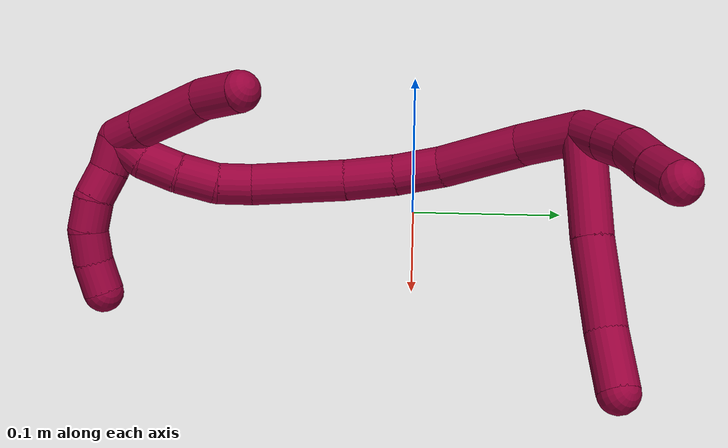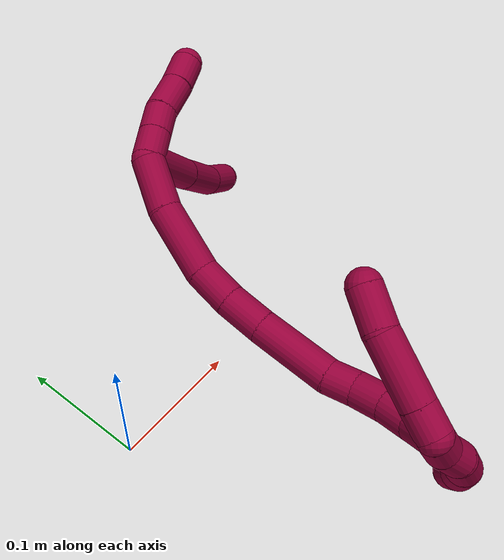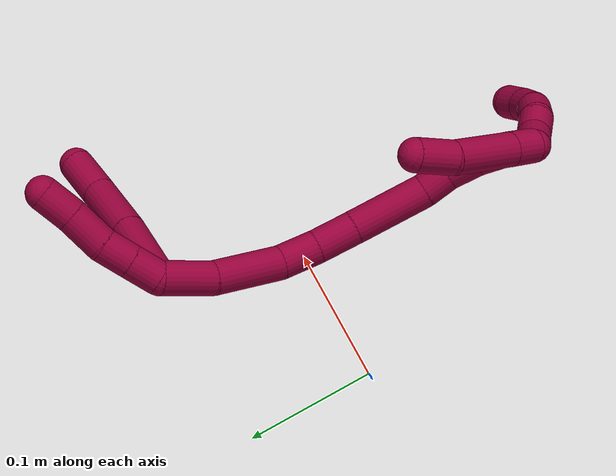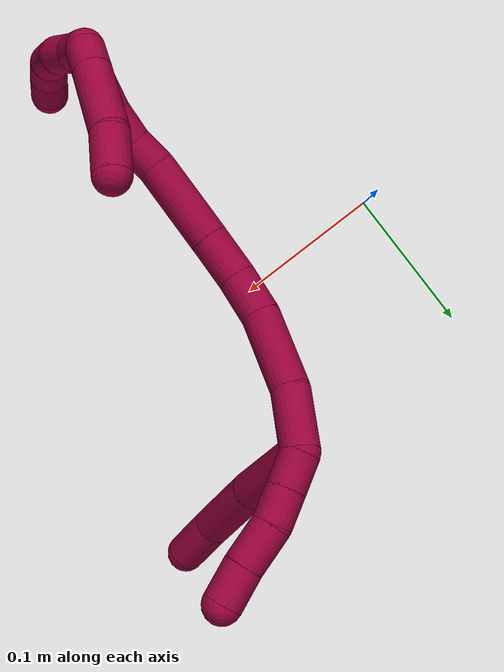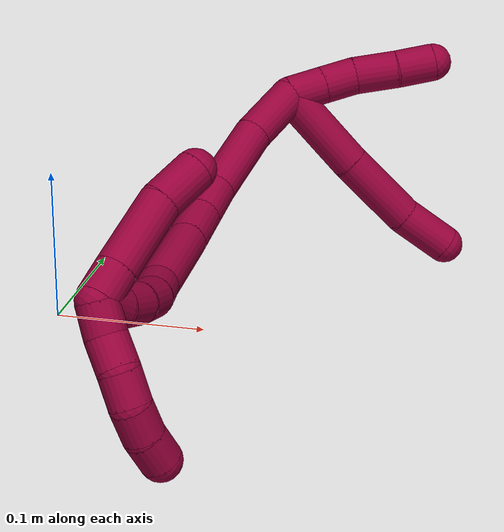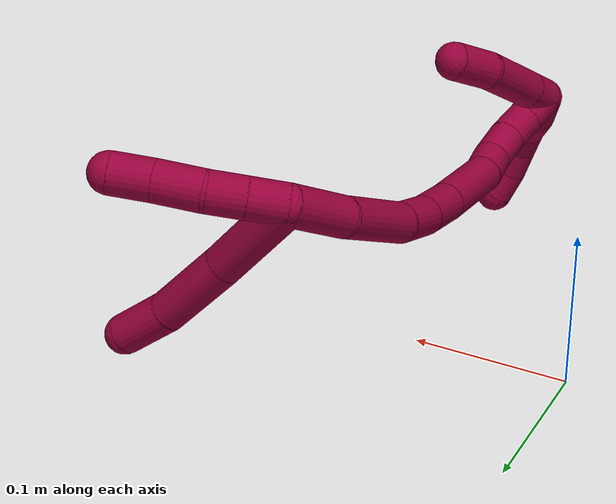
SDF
<sdf version="1.7">
 <world name="default">
  <model name="8">
   <static>0</static>
   <link name="8">
    <collision name="collision-cylinder-e_1_2_8">
     <pose>0.028643 0.010535 -0.004849 -2.00218 1.18607 -1.62162</pose>
     <geometry><cylinder><radius>0.0125</radius><length>0.061804</length></cylinder></geometry>
     <surface>
      <friction><ode><mu>1.16</mu><mu2>1.16</mu2><slip1>0</slip1><slip2>0</slip2></ode></friction>
      <contact><ode><kp>1e+06</kp><kd>1</kd><max_vel>0</max_vel><min_depth>0.001</min_depth></ode></contact>
     </surface>
    </collision>
    <visual name="visual-cylinder-e_1_2_8">
     <pose>0.028643 0.010535 -0.004849 -2.00218 1.18607 -1.62162</pose>
     <geometry><cylinder><radius>0.0125</radius><length>0.061804</length></cylinder></geometry>
     <material><ambient>0.584314 0 0.227451 1</ambient></material>
    </visual>
    <collision name="collision-cylinder-e_2_8_9">
     <pose>0.081696 0.030896 -0.012209 -1.82096 1.17704 -1.41985</pose>
     <geometry><cylinder><radius>0.0125</radius><length>0.052865</length></cylinder></geometry>
     <surface>
      <friction><ode><mu>1.16</mu><mu2>1.16</mu2><slip1>0</slip1><slip2>0</slip2></ode></friction>
      <contact><ode><kp>1e+06</kp><kd>1</kd><max_vel>0</max_vel><min_depth>0.001</min_depth></ode></contact>
     </surface>
    </collision>
    <visual name="visual-cylinder-e_2_8_9">
     <pose>0.081696 0.030896 -0.012209 -1.82096 1.17704 -1.41985</pose>
     <geometry><cylinder><radius>0.0125</radius><length>0.052865</length></cylinder></geometry>
     <material><ambient>0.584314 0 0.227451 1</ambient></material>
    </visual>
    <collision name="collision-cylinder-e_3_9_6">
     <pose>0.12288 0.04617 -0.013722 -1.38971 1.25185 -1.08459</pose>
     <geometry><cylinder><radius>0.0125</radius><length>0.035331</length></cylinder></geometry>
     <surface>
      <friction><ode><mu>1.16</mu><mu2>1.16</mu2><slip1>0</slip1><slip2>0</slip2></ode></friction>
      <contact><ode><kp>1e+06</kp><kd>1</kd><max_vel>0</max_vel><min_depth>0.001</min_depth></ode></contact>
     </surface>
    </collision>
    <visual name="visual-cylinder-e_3_9_6">
     <pose>0.12288 0.04617 -0.013722 -1.38971 1.25185 -1.08459</pose>
     <geometry><cylinder><radius>0.0125</radius><length>0.035331</length></cylinder></geometry>
     <material><ambient>0.584314 0 0.227451 1</ambient></material>
    </visual>
    <collision name="collision-cylinder-e_1_2_10">
     <pose>0.006548 0.001859 0.00952 -0.192887 0.593816 -0.05918</pose>
     <geometry><cylinder><radius>0.0125</radius><length>0.023406</length></cylinder></geometry>
     <surface>
      <friction><ode><mu>1.16</mu><mu2>1.16</mu2><slip1>0</slip1><slip2>0</slip2></ode></friction>
      <contact><ode><kp>1e+06</kp><kd>1</kd><max_vel>0</max_vel><min_depth>0.001</min_depth></ode></contact>
     </surface>
    </collision>
    <visual name="visual-cylinder-e_1_2_10">
     <pose>0.006548 0.001859 0.00952 -0.192887 0.593816 -0.05918</pose>
     <geometry><cylinder><radius>0.0125</radius><length>0.023406</length></cylinder></geometry>
     <material><ambient>0.584314 0 0.227451 1</ambient></material>
    </visual>
    <collision name="collision-cylinder-e_2_10_11">
     <pose>0.019488 0.0055 0.028219 -0.191644 0.599636 -0.059409</pose>
     <geometry><cylinder><radius>0.0125</radius><length>0.022652</length></cylinder></geometry>
     <surface>
      <friction><ode><mu>1.16</mu><mu2>1.16</mu2><slip1>0</slip1><slip2>0</slip2></ode></friction>
      <contact><ode><kp>1e+06</kp><kd>1</kd><max_vel>0</max_vel><min_depth>0.001</min_depth></ode></contact>
     </surface>
    </collision>
    <visual name="visual-cylinder-e_2_10_11">
     <pose>0.019488 0.0055 0.028219 -0.191644 0.599636 -0.059409</pose>
     <geometry><cylinder><radius>0.0125</radius><length>0.022652</length></cylinder></geometry>
     <material><ambient>0.584314 0 0.227451 1</ambient></material>
    </visual>
    <collision name="collision-cylinder-e_3_11_12">
     <pose>0.036087 0.007448 0.047617 -0.016358 0.784723 -0.00677</pose>
     <geometry><cylinder><radius>0.0125</radius><length>0.02889</length></cylinder></geometry>
     <surface>
      <friction><ode><mu>1.16</mu><mu2>1.16</mu2><slip1>0</slip1><slip2>0</slip2></ode></friction>
      <contact><ode><kp>1e+06</kp><kd>1</kd><max_vel>0</max_vel><min_depth>0.001</min_depth></ode></contact>
     </surface>
    </collision>
    <visual name="visual-cylinder-e_3_11_12">
     <pose>0.036087 0.007448 0.047617 -0.016358 0.784723 -0.00677</pose>
     <geometry><cylinder><radius>0.0125</radius><length>0.02889</length></cylinder></geometry>
     <material><ambient>0.584314 0 0.227451 1</ambient></material>
    </visual>
    <collision name="collision-cylinder-e_4_12_5">
     <pose>0.054549 0.008688 0.067197 -0.114157 0.719444 -0.042973</pose>
     <geometry><cylinder><radius>0.0125</radius><length>0.025052</length></cylinder></geometry>
     <surface>
      <friction><ode><mu>1.16</mu><mu2>1.16</mu2><slip1>0</slip1><slip2>0</slip2></ode></friction>
      <contact><ode><kp>1e+06</kp><kd>1</kd><max_vel>0</max_vel><min_depth>0.001</min_depth></ode></contact>
     </surface>
    </collision>
    <visual name="visual-cylinder-e_4_12_5">
     <pose>0.054549 0.008688 0.067197 -0.114157 0.719444 -0.042973</pose>
     <geometry><cylinder><radius>0.0125</radius><length>0.025052</length></cylinder></geometry>
     <material><ambient>0.584314 0 0.227451 1</ambient></material>
    </visual>
    <collision name="collision-cylinder-e_1_2_13">
     <pose>-0.001056 -0.00705 -0.019208 2.78983 -0.051583 -0.288302</pose>
     <geometry><cylinder><radius>0.0125</radius><length>0.040975</length></cylinder></geometry>
     <surface>
      <friction><ode><mu>1.16</mu><mu2>1.16</mu2><slip1>0</slip1><slip2>0</slip2></ode></friction>
      <contact><ode><kp>1e+06</kp><kd>1</kd><max_vel>0</max_vel><min_depth>0.001</min_depth></ode></contact>
     </surface>
    </collision>
    <visual name="visual-cylinder-e_1_2_13">
     <pose>-0.001056 -0.00705 -0.019208 2.78983 -0.051583 -0.288302</pose>
     <geometry><cylinder><radius>0.0125</radius><length>0.040975</length></cylinder></geometry>
     <material><ambient>0.584314 0 0.227451 1</ambient></material>
    </visual>
    <collision name="collision-cylinder-e_2_13_14">
     <pose>0.000869 -0.026438 -0.061725 2.65478 0.112562 0.4462</pose>
     <geometry><cylinder><radius>0.0125</radius><length>0.053084</length></cylinder></geometry>
     <surface>
      <friction><ode><mu>1.16</mu><mu2>1.16</mu2><slip1>0</slip1><slip2>0</slip2></ode></friction>
      <contact><ode><kp>1e+06</kp><kd>1</kd><max_vel>0</max_vel><min_depth>0.001</min_depth></ode></contact>
     </surface>
    </collision>
    <visual name="visual-cylinder-e_2_13_14">
     <pose>0.000869 -0.026438 -0.061725 2.65478 0.112562 0.4462</pose>
     <geometry><cylinder><radius>0.0125</radius><length>0.053084</length></cylinder></geometry>
     <material><ambient>0.584314 0 0.227451 1</ambient></material>
    </visual>
    <collision name="collision-cylinder-e_3_14_15">
     <pose>0.006468 -0.048223 -0.095793 2.42095 0.180844 0.472315</pose>
     <geometry><cylinder><radius>0.0125</radius><length>0.029109</length></cylinder></geometry>
     <surface>
      <friction><ode><mu>1.16</mu><mu2>1.16</mu2><slip1>0</slip1><slip2>0</slip2></ode></friction>
      <contact><ode><kp>1e+06</kp><kd>1</kd><max_vel>0</max_vel><min_depth>0.001</min_depth></ode></contact>
     </surface>
    </collision>
    <visual name="visual-cylinder-e_3_14_15">
     <pose>0.006468 -0.048223 -0.095793 2.42095 0.180844 0.472315</pose>
     <geometry><cylinder><radius>0.0125</radius><length>0.029109</length></cylinder></geometry>
     <material><ambient>0.584314 0 0.227451 1</ambient></material>
    </visual>
    <collision name="collision-cylinder-e_4_15_16">
     <pose>0.011868 -0.069052 -0.116525 2.29045 0.181844 0.396992</pose>
     <geometry><cylinder><radius>0.0125</radius><length>0.030775</length></cylinder></geometry>
     <surface>
      <friction><ode><mu>1.16</mu><mu2>1.16</mu2><slip1>0</slip1><slip2>0</slip2></ode></friction>
      <contact><ode><kp>1e+06</kp><kd>1</kd><max_vel>0</max_vel><min_depth>0.001</min_depth></ode></contact>
     </surface>
    </collision>
    <visual name="visual-cylinder-e_4_15_16">
     <pose>0.011868 -0.069052 -0.116525 2.29045 0.181844 0.396992</pose>
     <geometry><cylinder><radius>0.0125</radius><length>0.030775</length></cylinder></geometry>
     <material><ambient>0.584314 0 0.227451 1</ambient></material>
    </visual>
    <collision name="collision-cylinder-e_5_16_17">
     <pose>0.019157 -0.102915 -0.14374 2.22497 0.15771 0.317637</pose>
     <geometry><cylinder><radius>0.0125</radius><length>0.057374</length></cylinder></geometry>
     <surface>
      <friction><ode><mu>1.16</mu><mu2>1.16</mu2><slip1>0</slip1><slip2>0</slip2></ode></friction>
      <contact><ode><kp>1e+06</kp><kd>1</kd><max_vel>0</max_vel><min_depth>0.001</min_depth></ode></contact>
     </surface>
    </collision>
    <visual name="visual-cylinder-e_5_16_17">
     <pose>0.019157 -0.102915 -0.14374 2.22497 0.15771 0.317637</pose>
     <geometry><cylinder><radius>0.0125</radius><length>0.057374</length></cylinder></geometry>
     <material><ambient>0.584314 0 0.227451 1</ambient></material>
    </visual>
    <collision name="collision-cylinder-e_6_17_18">
     <pose>0.025837 -0.134953 -0.165309 1.99619 0.204474 0.315581</pose>
     <geometry><cylinder><radius>0.0125</radius><length>0.021426</length></cylinder></geometry>
     <surface>
      <friction><ode><mu>1.16</mu><mu2>1.16</mu2><slip1>0</slip1><slip2>0</slip2></ode></friction>
      <contact><ode><kp>1e+06</kp><kd>1</kd><max_vel>0</max_vel><min_depth>0.001</min_depth></ode></contact>
     </surface>
    </collision>
    <visual name="visual-cylinder-e_6_17_18">
     <pose>0.025837 -0.134953 -0.165309 1.99619 0.204474 0.315581</pose>
     <geometry><cylinder><radius>0.0125</radius><length>0.021426</length></cylinder></geometry>
     <material><ambient>0.584314 0 0.227451 1</ambient></material>
    </visual>
    <collision name="collision-cylinder-e_7_18_19">
     <pose>0.027491 -0.155598 -0.173964 1.94281 -0.043837 -0.064149</pose>
     <geometry><cylinder><radius>0.0125</radius><length>0.023831</length></cylinder></geometry>
     <surface>
      <friction><ode><mu>1.16</mu><mu2>1.16</mu2><slip1>0</slip1><slip2>0</slip2></ode></friction>
      <contact><ode><kp>1e+06</kp><kd>1</kd><max_vel>0</max_vel><min_depth>0.001</min_depth></ode></contact>
     </surface>
    </collision>
    <visual name="visual-cylinder-e_7_18_19">
     <pose>0.027491 -0.155598 -0.173964 1.94281 -0.043837 -0.064149</pose>
     <geometry><cylinder><radius>0.0125</radius><length>0.023831</length></cylinder></geometry>
     <material><ambient>0.584314 0 0.227451 1</ambient></material>
    </visual>
    <collision name="collision-cylinder-e_8_19_20">
     <pose>0.024772 -0.177065 -0.18275 1.97659 -0.192032 -0.290353</pose>
     <geometry><cylinder><radius>0.0125</radius><length>0.023014</length></cylinder></geometry>
     <surface>
      <friction><ode><mu>1.16</mu><mu2>1.16</mu2><slip1>0</slip1><slip2>0</slip2></ode></friction>
      <contact><ode><kp>1e+06</kp><kd>1</kd><max_vel>0</max_vel><min_depth>0.001</min_depth></ode></contact>
     </surface>
    </collision>
    <visual name="visual-cylinder-e_8_19_20">
     <pose>0.024772 -0.177065 -0.18275 1.97659 -0.192032 -0.290353</pose>
     <geometry><cylinder><radius>0.0125</radius><length>0.023014</length></cylinder></geometry>
     <material><ambient>0.584314 0 0.227451 1</ambient></material>
    </visual>
    <collision name="collision-cylinder-e_9_20_1">
     <pose>0.018239 -0.196402 -0.189464 1.8174 -0.438882 -0.557377</pose>
     <geometry><cylinder><radius>0.0125</radius><length>0.020411</length></cylinder></geometry>
     <surface>
      <friction><ode><mu>1.16</mu><mu2>1.16</mu2><slip1>0</slip1><slip2>0</slip2></ode></friction>
      <contact><ode><kp>1e+06</kp><kd>1</kd><max_vel>0</max_vel><min_depth>0.001</min_depth></ode></contact>
     </surface>
    </collision>
    <visual name="visual-cylinder-e_9_20_1">
     <pose>0.018239 -0.196402 -0.189464 1.8174 -0.438882 -0.557377</pose>
     <geometry><cylinder><radius>0.0125</radius><length>0.020411</length></cylinder></geometry>
     <material><ambient>0.584314 0 0.227451 1</ambient></material>
    </visual>
    <collision name="collision-cylinder-e_1_1_21">
     <pose>0.021492 -0.20363 -0.197997 -2.87251 0.861617 -2.56877</pose>
     <geometry><cylinder><radius>0.0125</radius><length>0.02</length></cylinder></geometry>
     <surface>
      <friction><ode><mu>1.16</mu><mu2>1.16</mu2><slip1>0</slip1><slip2>0</slip2></ode></friction>
      <contact><ode><kp>1e+06</kp><kd>1</kd><max_vel>0</max_vel><min_depth>0.001</min_depth></ode></contact>
     </surface>
    </collision>
    <visual name="visual-cylinder-e_1_1_21">
     <pose>0.021492 -0.20363 -0.197997 -2.87251 0.861617 -2.56877</pose>
     <geometry><cylinder><radius>0.0125</radius><length>0.02</length></cylinder></geometry>
     <material><ambient>0.584314 0 0.227451 1</ambient></material>
    </visual>
    <collision name="collision-cylinder-e_2_21_22">
     <pose>0.037514 -0.202555 -0.209609 3.01928 1.00351 2.91927</pose>
     <geometry><cylinder><radius>0.0125</radius><length>0.02</length></cylinder></geometry>
     <surface>
      <friction><ode><mu>1.16</mu><mu2>1.16</mu2><slip1>0</slip1><slip2>0</slip2></ode></friction>
      <contact><ode><kp>1e+06</kp><kd>1</kd><max_vel>0</max_vel><min_depth>0.001</min_depth></ode></contact>
     </surface>
    </collision>
    <visual name="visual-cylinder-e_2_21_22">
     <pose>0.037514 -0.202555 -0.209609 3.01928 1.00351 2.91927</pose>
     <geometry><cylinder><radius>0.0125</radius><length>0.02</length></cylinder></geometry>
     <material><ambient>0.584314 0 0.227451 1</ambient></material>
    </visual>
    <collision name="collision-cylinder-e_3_22_23">
     <pose>0.053815 -0.200692 -0.220579 -2.72147 0.90541 -2.31537</pose>
     <geometry><cylinder><radius>0.0125</radius><length>0.02</length></cylinder></geometry>
     <surface>
      <friction><ode><mu>1.16</mu><mu2>1.16</mu2><slip1>0</slip1><slip2>0</slip2></ode></friction>
      <contact><ode><kp>1e+06</kp><kd>1</kd><max_vel>0</max_vel><min_depth>0.001</min_depth></ode></contact>
     </surface>
    </collision>
    <visual name="visual-cylinder-e_3_22_23">
     <pose>0.053815 -0.200692 -0.220579 -2.72147 0.90541 -2.31537</pose>
     <geometry><cylinder><radius>0.0125</radius><length>0.02</length></cylinder></geometry>
     <material><ambient>0.584314 0 0.227451 1</ambient></material>
    </visual>
    <collision name="collision-cylinder-e_4_23_24">
     <pose>0.068744 -0.192606 -0.230588 -2.23647 0.784116 -1.40941</pose>
     <geometry><cylinder><radius>0.0125</radius><length>0.02</length></cylinder></geometry>
     <surface>
      <friction><ode><mu>1.16</mu><mu2>1.16</mu2><slip1>0</slip1><slip2>0</slip2></ode></friction>
      <contact><ode><kp>1e+06</kp><kd>1</kd><max_vel>0</max_vel><min_depth>0.001</min_depth></ode></contact>
     </surface>
    </collision>
    <visual name="visual-cylinder-e_4_23_24">
     <pose>0.068744 -0.192606 -0.230588 -2.23647 0.784116 -1.40941</pose>
     <geometry><cylinder><radius>0.0125</radius><length>0.02</length></cylinder></geometry>
     <material><ambient>0.584314 0 0.227451 1</ambient></material>
    </visual>
    <collision name="collision-cylinder-e_5_24_4">
     <pose>0.082858 -0.180451 -0.237586 -1.95016 0.78275 -1.09368</pose>
     <geometry><cylinder><radius>0.0125</radius><length>0.02</length></cylinder></geometry>
     <surface>
      <friction><ode><mu>1.16</mu><mu2>1.16</mu2><slip1>0</slip1><slip2>0</slip2></ode></friction>
      <contact><ode><kp>1e+06</kp><kd>1</kd><max_vel>0</max_vel><min_depth>0.001</min_depth></ode></contact>
     </surface>
    </collision>
    <visual name="visual-cylinder-e_5_24_4">
     <pose>0.082858 -0.180451 -0.237586 -1.95016 0.78275 -1.09368</pose>
     <geometry><cylinder><radius>0.0125</radius><length>0.02</length></cylinder></geometry>
     <material><ambient>0.584314 0 0.227451 1</ambient></material>
    </visual>
    <collision name="collision-cylinder-e_1_1_25">
     <pose>0.012439 -0.201637 -0.182086 -0.368907 -0.1408 0.026312</pose>
     <geometry><cylinder><radius>0.0125</radius><length>0.020864</length></cylinder></geometry>
     <surface>
      <friction><ode><mu>1.16</mu><mu2>1.16</mu2><slip1>0</slip1><slip2>0</slip2></ode></friction>
      <contact><ode><kp>1e+06</kp><kd>1</kd><max_vel>0</max_vel><min_depth>0.001</min_depth></ode></contact>
     </surface>
    </collision>
    <visual name="visual-cylinder-e_1_1_25">
     <pose>0.012439 -0.201637 -0.182086 -0.368907 -0.1408 0.026312</pose>
     <geometry><cylinder><radius>0.0125</radius><length>0.020864</length></cylinder></geometry>
     <material><ambient>0.584314 0 0.227451 1</ambient></material>
    </visual>
    <collision name="collision-cylinder-e_2_25_26">
     <pose>0.007939 -0.189264 -0.149566 -0.361312 -0.123458 0.022577</pose>
     <geometry><cylinder><radius>0.0125</radius><length>0.049307</length></cylinder></geometry>
     <surface>
      <friction><ode><mu>1.16</mu><mu2>1.16</mu2><slip1>0</slip1><slip2>0</slip2></ode></friction>
      <contact><ode><kp>1e+06</kp><kd>1</kd><max_vel>0</max_vel><min_depth>0.001</min_depth></ode></contact>
     </surface>
    </collision>
    <visual name="visual-cylinder-e_2_25_26">
     <pose>0.007939 -0.189264 -0.149566 -0.361312 -0.123458 0.022577</pose>
     <geometry><cylinder><radius>0.0125</radius><length>0.049307</length></cylinder></geometry>
     <material><ambient>0.584314 0 0.227451 1</ambient></material>
    </visual>
    <collision name="collision-cylinder-e_3_26_3">
     <pose>0.006477 -0.175327 -0.112823 -0.364576 0.105723 -0.019506</pose>
     <geometry><cylinder><radius>0.0125</radius><length>0.02983</length></cylinder></geometry>
     <surface>
      <friction><ode><mu>1.16</mu><mu2>1.16</mu2><slip1>0</slip1><slip2>0</slip2></ode></friction>
      <contact><ode><kp>1e+06</kp><kd>1</kd><max_vel>0</max_vel><min_depth>0.001</min_depth></ode></contact>
     </surface>
    </collision>
    <visual name="visual-cylinder-e_3_26_3">
     <pose>0.006477 -0.175327 -0.112823 -0.364576 0.105723 -0.019506</pose>
     <geometry><cylinder><radius>0.0125</radius><length>0.02983</length></cylinder></geometry>
     <material><ambient>0.584314 0 0.227451 1</ambient></material>
    </visual>
    <collision name="collision-sphere-3">
     <pose>0.008051 -0.170039 -0.098967 0 -0 0</pose>
     <geometry><sphere><radius>0.0125</radius></sphere></geometry>
     <surface>
      <friction><ode><mu>1.16</mu><mu2>1.16</mu2><slip1>0</slip1><slip2>0</slip2></ode></friction>
      <contact><ode><kp>1e+06</kp><kd>1</kd><max_vel>0</max_vel><min_depth>0.001</min_depth></ode></contact>
     </surface>
    </collision>
    <visual name="visual-sphere-3">
     <pose>0.008051 -0.170039 -0.098967 0 -0 0</pose>
     <geometry><sphere><radius>0.0125</radius></sphere></geometry>
     <material><ambient>0.584314 0 0.227451 1</ambient></material>
    </visual>
    <collision name="collision-sphere-26">
     <pose>0.004903 -0.180615 -0.12668 0 -0 0</pose>
     <geometry><sphere><radius>0.0125</radius></sphere></geometry>
     <surface>
      <friction><ode><mu>1.16</mu><mu2>1.16</mu2><slip1>0</slip1><slip2>0</slip2></ode></friction>
      <contact><ode><kp>1e+06</kp><kd>1</kd><max_vel>0</max_vel><min_depth>0.001</min_depth></ode></contact>
     </surface>
    </collision>
    <visual name="visual-sphere-26">
     <pose>0.004903 -0.180615 -0.12668 0 -0 0</pose>
     <geometry><sphere><radius>0.0125</radius></sphere></geometry>
     <material><ambient>0.584314 0 0.227451 1</ambient></material>
    </visual>
    <collision name="collision-sphere-25">
     <pose>0.010975 -0.197912 -0.172452 0 -0 0</pose>
     <geometry><sphere><radius>0.0125</radius></sphere></geometry>
     <surface>
      <friction><ode><mu>1.16</mu><mu2>1.16</mu2><slip1>0</slip1><slip2>0</slip2></ode></friction>
      <contact><ode><kp>1e+06</kp><kd>1</kd><max_vel>0</max_vel><min_depth>0.001</min_depth></ode></contact>
     </surface>
    </collision>
    <visual name="visual-sphere-25">
     <pose>0.010975 -0.197912 -0.172452 0 -0 0</pose>
     <geometry><sphere><radius>0.0125</radius></sphere></geometry>
     <material><ambient>0.584314 0 0.227451 1</ambient></material>
    </visual>
    <collision name="collision-sphere-4">
     <pose>0.08991 -0.173866 -0.240212 0 -0 0</pose>
     <geometry><sphere><radius>0.0125</radius></sphere></geometry>
     <surface>
      <friction><ode><mu>1.16</mu><mu2>1.16</mu2><slip1>0</slip1><slip2>0</slip2></ode></friction>
      <contact><ode><kp>1e+06</kp><kd>1</kd><max_vel>0</max_vel><min_depth>0.001</min_depth></ode></contact>
     </surface>
    </collision>
    <visual name="visual-sphere-4">
     <pose>0.08991 -0.173866 -0.240212 0 -0 0</pose>
     <geometry><sphere><radius>0.0125</radius></sphere></geometry>
     <material><ambient>0.584314 0 0.227451 1</ambient></material>
    </visual>
    <collision name="collision-sphere-24">
     <pose>0.075806 -0.187037 -0.234961 0 -0 0</pose>
     <geometry><sphere><radius>0.0125</radius></sphere></geometry>
     <surface>
      <friction><ode><mu>1.16</mu><mu2>1.16</mu2><slip1>0</slip1><slip2>0</slip2></ode></friction>
      <contact><ode><kp>1e+06</kp><kd>1</kd><max_vel>0</max_vel><min_depth>0.001</min_depth></ode></contact>
     </surface>
    </collision>
    <visual name="visual-sphere-24">
     <pose>0.075806 -0.187037 -0.234961 0 -0 0</pose>
     <geometry><sphere><radius>0.0125</radius></sphere></geometry>
     <material><ambient>0.584314 0 0.227451 1</ambient></material>
    </visual>
    <collision name="collision-sphere-23">
     <pose>0.061682 -0.198174 -0.226215 0 -0 0</pose>
     <geometry><sphere><radius>0.0125</radius></sphere></geometry>
     <surface>
      <friction><ode><mu>1.16</mu><mu2>1.16</mu2><slip1>0</slip1><slip2>0</slip2></ode></friction>
      <contact><ode><kp>1e+06</kp><kd>1</kd><max_vel>0</max_vel><min_depth>0.001</min_depth></ode></contact>
     </surface>
    </collision>
    <visual name="visual-sphere-23">
     <pose>0.061682 -0.198174 -0.226215 0 -0 0</pose>
     <geometry><sphere><radius>0.0125</radius></sphere></geometry>
     <material><ambient>0.584314 0 0.227451 1</ambient></material>
    </visual>
    <collision name="collision-sphere-22">
     <pose>0.045948 -0.20321 -0.214942 0 -0 0</pose>
     <geometry><sphere><radius>0.0125</radius></sphere></geometry>
     <surface>
      <friction><ode><mu>1.16</mu><mu2>1.16</mu2><slip1>0</slip1><slip2>0</slip2></ode></friction>
      <contact><ode><kp>1e+06</kp><kd>1</kd><max_vel>0</max_vel><min_depth>0.001</min_depth></ode></contact>
     </surface>
    </collision>
    <visual name="visual-sphere-22">
     <pose>0.045948 -0.20321 -0.214942 0 -0 0</pose>
     <geometry><sphere><radius>0.0125</radius></sphere></geometry>
     <material><ambient>0.584314 0 0.227451 1</ambient></material>
    </visual>
    <collision name="collision-sphere-21">
     <pose>0.029081 -0.201899 -0.204275 0 -0 0</pose>
     <geometry><sphere><radius>0.0125</radius></sphere></geometry>
     <surface>
      <friction><ode><mu>1.16</mu><mu2>1.16</mu2><slip1>0</slip1><slip2>0</slip2></ode></friction>
      <contact><ode><kp>1e+06</kp><kd>1</kd><max_vel>0</max_vel><min_depth>0.001</min_depth></ode></contact>
     </surface>
    </collision>
    <visual name="visual-sphere-21">
     <pose>0.029081 -0.201899 -0.204275 0 -0 0</pose>
     <geometry><sphere><radius>0.0125</radius></sphere></geometry>
     <material><ambient>0.584314 0 0.227451 1</ambient></material>
    </visual>
    <collision name="collision-sphere-1">
     <pose>0.013903 -0.205361 -0.19172 0 -0 0</pose>
     <geometry><sphere><radius>0.0125</radius></sphere></geometry>
     <surface>
      <friction><ode><mu>1.16</mu><mu2>1.16</mu2><slip1>0</slip1><slip2>0</slip2></ode></friction>
      <contact><ode><kp>1e+06</kp><kd>1</kd><max_vel>0</max_vel><min_depth>0.001</min_depth></ode></contact>
     </surface>
    </collision>
    <visual name="visual-sphere-1">
     <pose>0.013903 -0.205361 -0.19172 0 -0 0</pose>
     <geometry><sphere><radius>0.0125</radius></sphere></geometry>
     <material><ambient>0.584314 0 0.227451 1</ambient></material>
    </visual>
    <collision name="collision-sphere-11">
     <pose>0.02588 0.007281 0.037398 0 -0 0</pose>
     <geometry><sphere><radius>0.0125</radius></sphere></geometry>
     <surface>
      <friction><ode><mu>1.16</mu><mu2>1.16</mu2><slip1>0</slip1><slip2>0</slip2></ode></friction>
      <contact><ode><kp>1e+06</kp><kd>1</kd><max_vel>0</max_vel><min_depth>0.001</min_depth></ode></contact>
     </surface>
    </collision>
    <visual name="visual-sphere-11">
     <pose>0.02588 0.007281 0.037398 0 -0 0</pose>
     <geometry><sphere><radius>0.0125</radius></sphere></geometry>
     <material><ambient>0.584314 0 0.227451 1</ambient></material>
    </visual>
    <collision name="collision-sphere-10">
     <pose>0.013097 0.003719 0.01904 0 -0 0</pose>
     <geometry><sphere><radius>0.0125</radius></sphere></geometry>
     <surface>
      <friction><ode><mu>1.16</mu><mu2>1.16</mu2><slip1>0</slip1><slip2>0</slip2></ode></friction>
      <contact><ode><kp>1e+06</kp><kd>1</kd><max_vel>0</max_vel><min_depth>0.001</min_depth></ode></contact>
     </surface>
    </collision>
    <visual name="visual-sphere-10">
     <pose>0.013097 0.003719 0.01904 0 -0 0</pose>
     <geometry><sphere><radius>0.0125</radius></sphere></geometry>
     <material><ambient>0.584314 0 0.227451 1</ambient></material>
    </visual>
    <collision name="collision-sphere-6">
     <pose>0.139655 0.051618 -0.012725 0 -0 0</pose>
     <geometry><sphere><radius>0.0125</radius></sphere></geometry>
     <surface>
      <friction><ode><mu>1.16</mu><mu2>1.16</mu2><slip1>0</slip1><slip2>0</slip2></ode></friction>
      <contact><ode><kp>1e+06</kp><kd>1</kd><max_vel>0</max_vel><min_depth>0.001</min_depth></ode></contact>
     </surface>
    </collision>
    <visual name="visual-sphere-6">
     <pose>0.139655 0.051618 -0.012725 0 -0 0</pose>
     <geometry><sphere><radius>0.0125</radius></sphere></geometry>
     <material><ambient>0.584314 0 0.227451 1</ambient></material>
    </visual>
    <collision name="collision-sphere-9">
     <pose>0.106106 0.040721 -0.01472 0 -0 0</pose>
     <geometry><sphere><radius>0.0125</radius></sphere></geometry>
     <surface>
      <friction><ode><mu>1.16</mu><mu2>1.16</mu2><slip1>0</slip1><slip2>0</slip2></ode></friction>
      <contact><ode><kp>1e+06</kp><kd>1</kd><max_vel>0</max_vel><min_depth>0.001</min_depth></ode></contact>
     </surface>
    </collision>
    <visual name="visual-sphere-9">
     <pose>0.106106 0.040721 -0.01472 0 -0 0</pose>
     <geometry><sphere><radius>0.0125</radius></sphere></geometry>
     <material><ambient>0.584314 0 0.227451 1</ambient></material>
    </visual>
    <collision name="collision-sphere-2">
     <geometry><sphere><radius>0.0125</radius></sphere></geometry>
     <surface>
      <friction><ode><mu>1.16</mu><mu2>1.16</mu2><slip1>0</slip1><slip2>0</slip2></ode></friction>
      <contact><ode><kp>1e+06</kp><kd>1</kd><max_vel>0</max_vel><min_depth>0.001</min_depth></ode></contact>
     </surface>
    </collision>
    <visual name="visual-sphere-2">
     <geometry><sphere><radius>0.0125</radius></sphere></geometry>
     <material><ambient>0.584314 0 0.227451 1</ambient></material>
    </visual>
    <collision name="collision-sphere-19">
     <pose>0.026968 -0.166687 -0.178291 0 -0 0</pose>
     <geometry><sphere><radius>0.0125</radius></sphere></geometry>
     <surface>
      <friction><ode><mu>1.16</mu><mu2>1.16</mu2><slip1>0</slip1><slip2>0</slip2></ode></friction>
      <contact><ode><kp>1e+06</kp><kd>1</kd><max_vel>0</max_vel><min_depth>0.001</min_depth></ode></contact>
     </surface>
    </collision>
    <visual name="visual-sphere-19">
     <pose>0.026968 -0.166687 -0.178291 0 -0 0</pose>
     <geometry><sphere><radius>0.0125</radius></sphere></geometry>
     <material><ambient>0.584314 0 0.227451 1</ambient></material>
    </visual>
    <collision name="collision-sphere-8">
     <pose>0.057286 0.02107 -0.009699 0 -0 0</pose>
     <geometry><sphere><radius>0.0125</radius></sphere></geometry>
     <surface>
      <friction><ode><mu>1.16</mu><mu2>1.16</mu2><slip1>0</slip1><slip2>0</slip2></ode></friction>
      <contact><ode><kp>1e+06</kp><kd>1</kd><max_vel>0</max_vel><min_depth>0.001</min_depth></ode></contact>
     </surface>
    </collision>
    <visual name="visual-sphere-8">
     <pose>0.057286 0.02107 -0.009699 0 -0 0</pose>
     <geometry><sphere><radius>0.0125</radius></sphere></geometry>
     <material><ambient>0.584314 0 0.227451 1</ambient></material>
    </visual>
    <collision name="collision-sphere-12">
     <pose>0.046294 0.007615 0.057837 0 -0 0</pose>
     <geometry><sphere><radius>0.0125</radius></sphere></geometry>
     <surface>
      <friction><ode><mu>1.16</mu><mu2>1.16</mu2><slip1>0</slip1><slip2>0</slip2></ode></friction>
      <contact><ode><kp>1e+06</kp><kd>1</kd><max_vel>0</max_vel><min_depth>0.001</min_depth></ode></contact>
     </surface>
    </collision>
    <visual name="visual-sphere-12">
     <pose>0.046294 0.007615 0.057837 0 -0 0</pose>
     <geometry><sphere><radius>0.0125</radius></sphere></geometry>
     <material><ambient>0.584314 0 0.227451 1</ambient></material>
    </visual>
    <collision name="collision-sphere-5">
     <pose>0.062803 0.009761 0.076557 0 -0 0</pose>
     <geometry><sphere><radius>0.0125</radius></sphere></geometry>
     <surface>
      <friction><ode><mu>1.16</mu><mu2>1.16</mu2><slip1>0</slip1><slip2>0</slip2></ode></friction>
      <contact><ode><kp>1e+06</kp><kd>1</kd><max_vel>0</max_vel><min_depth>0.001</min_depth></ode></contact>
     </surface>
    </collision>
    <visual name="visual-sphere-5">
     <pose>0.062803 0.009761 0.076557 0 -0 0</pose>
     <geometry><sphere><radius>0.0125</radius></sphere></geometry>
     <material><ambient>0.584314 0 0.227451 1</ambient></material>
    </visual>
    <collision name="collision-sphere-13">
     <pose>-0.002113 -0.014099 -0.038415 0 -0 0</pose>
     <geometry><sphere><radius>0.0125</radius></sphere></geometry>
     <surface>
      <friction><ode><mu>1.16</mu><mu2>1.16</mu2><slip1>0</slip1><slip2>0</slip2></ode></friction>
      <contact><ode><kp>1e+06</kp><kd>1</kd><max_vel>0</max_vel><min_depth>0.001</min_depth></ode></contact>
     </surface>
    </collision>
    <visual name="visual-sphere-13">
     <pose>-0.002113 -0.014099 -0.038415 0 -0 0</pose>
     <geometry><sphere><radius>0.0125</radius></sphere></geometry>
     <material><ambient>0.584314 0 0.227451 1</ambient></material>
    </visual>
    <collision name="collision-sphere-14">
     <pose>0.00385 -0.038776 -0.085035 0 -0 0</pose>
     <geometry><sphere><radius>0.0125</radius></sphere></geometry>
     <surface>
      <friction><ode><mu>1.16</mu><mu2>1.16</mu2><slip1>0</slip1><slip2>0</slip2></ode></friction>
      <contact><ode><kp>1e+06</kp><kd>1</kd><max_vel>0</max_vel><min_depth>0.001</min_depth></ode></contact>
     </surface>
    </collision>
    <visual name="visual-sphere-14">
     <pose>0.00385 -0.038776 -0.085035 0 -0 0</pose>
     <geometry><sphere><radius>0.0125</radius></sphere></geometry>
     <material><ambient>0.584314 0 0.227451 1</ambient></material>
    </visual>
    <collision name="collision-sphere-15">
     <pose>0.009085 -0.057671 -0.10655 0 -0 0</pose>
     <geometry><sphere><radius>0.0125</radius></sphere></geometry>
     <surface>
      <friction><ode><mu>1.16</mu><mu2>1.16</mu2><slip1>0</slip1><slip2>0</slip2></ode></friction>
      <contact><ode><kp>1e+06</kp><kd>1</kd><max_vel>0</max_vel><min_depth>0.001</min_depth></ode></contact>
     </surface>
    </collision>
    <visual name="visual-sphere-15">
     <pose>0.009085 -0.057671 -0.10655 0 -0 0</pose>
     <geometry><sphere><radius>0.0125</radius></sphere></geometry>
     <material><ambient>0.584314 0 0.227451 1</ambient></material>
    </visual>
    <collision name="collision-sphere-16">
     <pose>0.014651 -0.080433 -0.126501 0 -0 0</pose>
     <geometry><sphere><radius>0.0125</radius></sphere></geometry>
     <surface>
      <friction><ode><mu>1.16</mu><mu2>1.16</mu2><slip1>0</slip1><slip2>0</slip2></ode></friction>
      <contact><ode><kp>1e+06</kp><kd>1</kd><max_vel>0</max_vel><min_depth>0.001</min_depth></ode></contact>
     </surface>
    </collision>
    <visual name="visual-sphere-16">
     <pose>0.014651 -0.080433 -0.126501 0 -0 0</pose>
     <geometry><sphere><radius>0.0125</radius></sphere></geometry>
     <material><ambient>0.584314 0 0.227451 1</ambient></material>
    </visual>
    <collision name="collision-sphere-17">
     <pose>0.023662 -0.125398 -0.16098 0 -0 0</pose>
     <geometry><sphere><radius>0.0125</radius></sphere></geometry>
     <surface>
      <friction><ode><mu>1.16</mu><mu2>1.16</mu2><slip1>0</slip1><slip2>0</slip2></ode></friction>
      <contact><ode><kp>1e+06</kp><kd>1</kd><max_vel>0</max_vel><min_depth>0.001</min_depth></ode></contact>
     </surface>
    </collision>
    <visual name="visual-sphere-17">
     <pose>0.023662 -0.125398 -0.16098 0 -0 0</pose>
     <geometry><sphere><radius>0.0125</radius></sphere></geometry>
     <material><ambient>0.584314 0 0.227451 1</ambient></material>
    </visual>
    <collision name="collision-sphere-18">
     <pose>0.028013 -0.144508 -0.169637 0 -0 0</pose>
     <geometry><sphere><radius>0.0125</radius></sphere></geometry>
     <surface>
      <friction><ode><mu>1.16</mu><mu2>1.16</mu2><slip1>0</slip1><slip2>0</slip2></ode></friction>
      <contact><ode><kp>1e+06</kp><kd>1</kd><max_vel>0</max_vel><min_depth>0.001</min_depth></ode></contact>
     </surface>
    </collision>
    <visual name="visual-sphere-18">
     <pose>0.028013 -0.144508 -0.169637 0 -0 0</pose>
     <geometry><sphere><radius>0.0125</radius></sphere></geometry>
     <material><ambient>0.584314 0 0.227451 1</ambient></material>
    </visual>
    <collision name="collision-sphere-20">
     <pose>0.022576 -0.187444 -0.187209 0 -0 0</pose>
     <geometry><sphere><radius>0.0125</radius></sphere></geometry>
     <surface>
      <friction><ode><mu>1.16</mu><mu2>1.16</mu2><slip1>0</slip1><slip2>0</slip2></ode></friction>
      <contact><ode><kp>1e+06</kp><kd>1</kd><max_vel>0</max_vel><min_depth>0.001</min_depth></ode></contact>
     </surface>
    </collision>
    <visual name="visual-sphere-20">
     <pose>0.022576 -0.187444 -0.187209 0 -0 0</pose>
     <geometry><sphere><radius>0.0125</radius></sphere></geometry>
     <material><ambient>0.584314 0 0.227451 1</ambient></material>
    </visual>
    <inertial>
     <pose>0.031165 -0.079547 -0.091228 0 -0 0</pose>
     <mass>0.75</mass>
     <inertia><ixx>8.9e-05</ixx><ixy>0</ixy><ixz>0</ixz><iyy>2e-05</iyy><iyz>0</iyz><izz>-4.9e-05</izz></inertia>
    </inertial>
   </link>
   <pose>0.135747 0.095606 0.132719 -0.641921 0.517856 -0.154278</pose>
  </model>
 </world>
</sdf>
